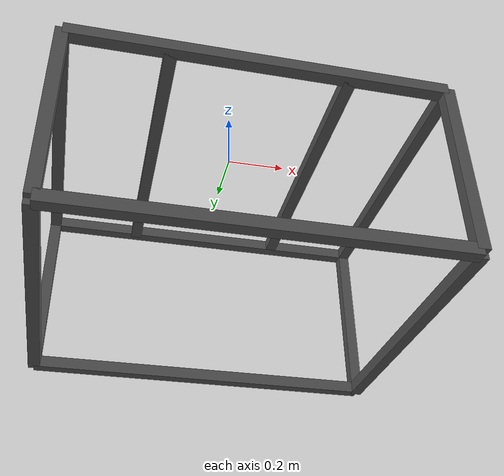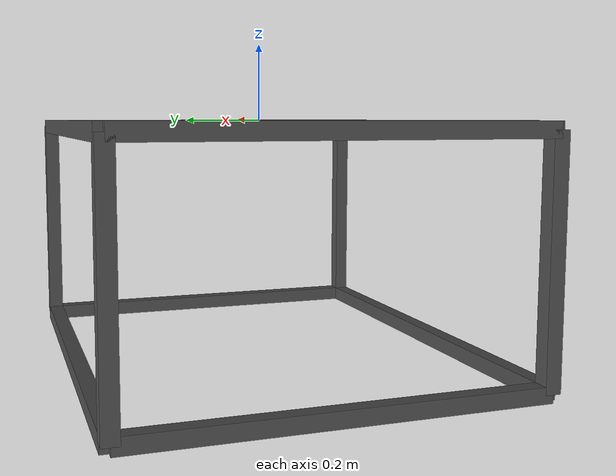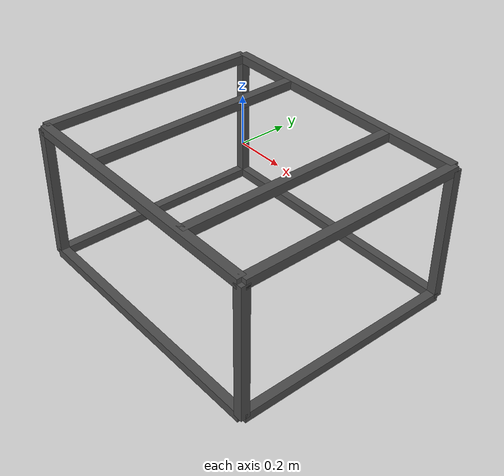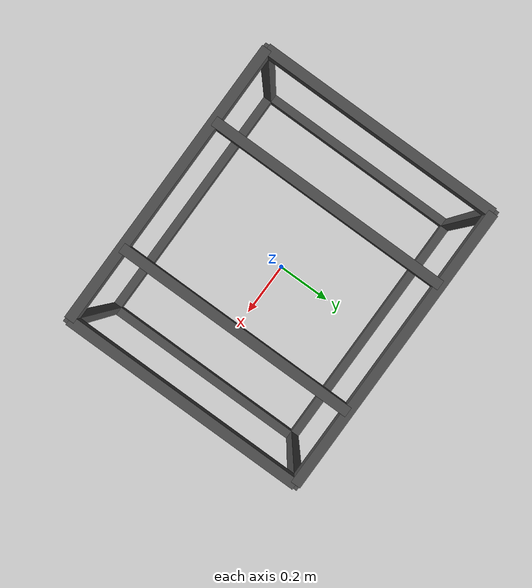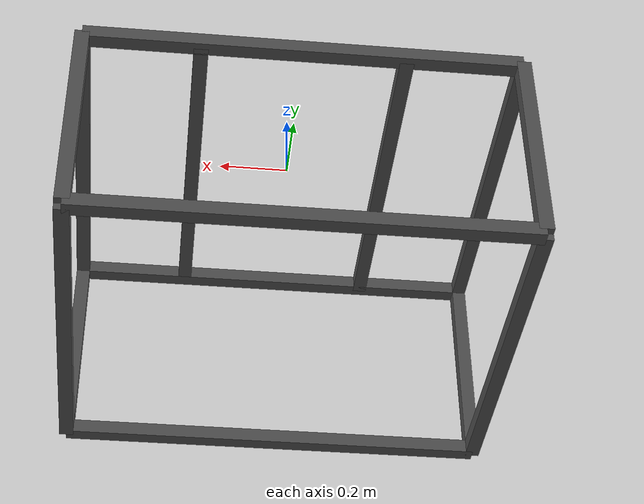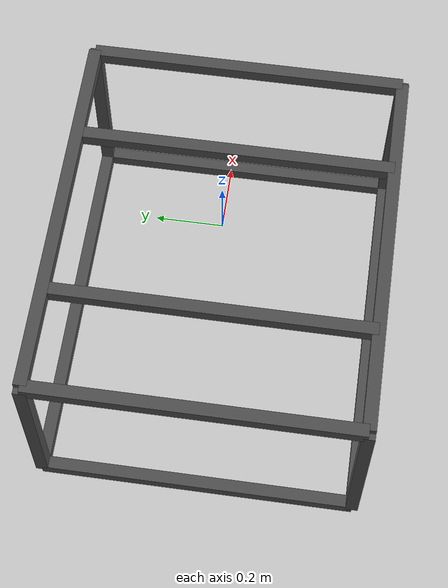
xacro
<?xml version="1.0" encoding="UTF-8"?>
<robot xmlns:xacro="http://wiki.ros.org/xacro">

    <xacro:property name="row_length" value="1"/>
    <xacro:property name="row_width" value="1.2"/>
    <xacro:property name="row_height" value="0.6"/>
    <xacro:property name="row_mounting_spacing" value="0.56"/>
    <xacro:property name="extrusion_width" value="0.04"/>

    <xacro:macro name="extrusion_material">
        <material name="StoglRobotics/DarkGrey"/>
    </xacro:macro>

    <link name="base_link"/>

    <joint name="base_link_to_row_extrusions" type="fixed">
        <origin xyz="0.0 0.0 0" rpy="0.0 0.0 0.0"/>
        <parent link="base_link"/>
        <child link="row_extrusions"/>
    </joint>

    <link name="row_extrusions">

        <!-- Mounting Bars for Racks -->
        <visual>
            <origin xyz="${row_mounting_spacing/2} 0.0 ${-extrusion_width/2}" rpy="0.0 0.0 0.0"/>
            <geometry>
                <box size="${extrusion_width} ${row_length} ${extrusion_width} "/>
            </geometry>
            <xacro:extrusion_material/>
        </visual>
        <visual>
            <origin xyz="${-row_mounting_spacing/2} 0.0 ${-extrusion_width/2}" rpy="0.0 0.0 0.0"/>
            <geometry>
                <box size="${extrusion_width} ${row_length} ${extrusion_width} "/>
            </geometry>
            <xacro:extrusion_material/>
        </visual>

        <!-- Front Bars -->
        <xacro:macro name="row_ends" params="prefix reflect">
        <visual name="upper_bar">
            <origin xyz="0 ${reflect*row_length/2} ${-extrusion_width/2}" rpy="0.0 0.0 0.0"/>
            <geometry>
                <box size="${row_width} ${extrusion_width} ${extrusion_width} "/>
            </geometry>
            <xacro:extrusion_material/>
        </visual>
        <visual name="upper_bar">
            <origin xyz="0 ${reflect*row_length/2} ${(-extrusion_width/2) - row_height}" rpy="0.0 0.0 0.0"/>
            <geometry>
                <box size="${row_width} ${extrusion_width} ${extrusion_width} "/>
            </geometry>
            <xacro:extrusion_material/>
        </visual>
        <visual name="right_bar">
            <origin xyz="${row_width/2} ${reflect*row_length/2} ${(-extrusion_width/2) - (row_height/2)}" rpy="0.0 0.0 0.0"/>
            <geometry>
                <box size="${extrusion_width} ${extrusion_width} ${row_height} "/>
            </geometry>
            <xacro:extrusion_material/>
        </visual>
        <visual name="left_bar">
            <origin xyz="${-row_width/2} ${reflect*row_length/2} ${(-extrusion_width/2) - (row_height/2)}" rpy="0.0 0.0 0.0"/>
            <geometry>
                <box size="${extrusion_width} ${extrusion_width} ${row_height} "/>
            </geometry>
            <xacro:extrusion_material/>
        </visual>
        </xacro:macro>

        <!-- Side Bars -->
        <xacro:macro name="row_sides" params="prefix reflect">
            <visual name="top_bar">
                <origin xyz="${reflect*row_width/2} 0.0 ${(-extrusion_width/2)}" rpy="0.0 0.0 0.0"/>
                <geometry>
                    <box size="${extrusion_width} ${row_length} ${extrusion_width} "/>
                </geometry>
                <xacro:extrusion_material/>
            </visual>
            <visual name="bottom_bar">
                <origin xyz="${reflect*row_width/2} 0.0 ${(-extrusion_width/2) - row_height}" rpy="0.0 0.0 0.0"/>
                <geometry>
                    <box size="${extrusion_width} ${row_length} ${extrusion_width} "/>
                </geometry>
                <xacro:extrusion_material/>
            </visual>

        </xacro:macro>

        <xacro:row_ends prefix="front" reflect="1"/>
        <xacro:row_ends prefix="back" reflect="-1"/>

        <xacro:row_sides prefix="right" reflect="1"/>
        <xacro:row_sides prefix="left" reflect="-1"/>

    </link>

    <xacro:macro name="rack" params="num">

        <xacro:property name="length" value="0.6"/>
        <xacro:property name="width" value="0.02"/>
        <xacro:property name="spacing" value="0.1"/>

        <joint name="row_extrusions_to_rack_extrusions" type="fixed">
            <origin xyz="0.0 0.0 0.0" rpy="0.0 0.0 0.0"/>
            <parent link="row_extrusions"/>
            <child link="rack_${num}_extrusions"/>
        </joint>

        <link name="rack_${num}_extrusions">
            <visual>
                <origin xyz="0.0 ${spacing/2} ${width/2}" rpy="0.0 0.0 0.0"/>
                <geometry>
                    <box size="${length} ${width} ${width} "/>
                </geometry>
            </visual>
            <visual>
                <origin xyz="0.0 ${-spacing/2} ${width/2}" rpy="0.0 0.0 0.0"/>
                <geometry>
                    <box size="${length} ${width} ${width} "/>
                </geometry>
            </visual>
        </link>

    </xacro:macro>

</robot>
